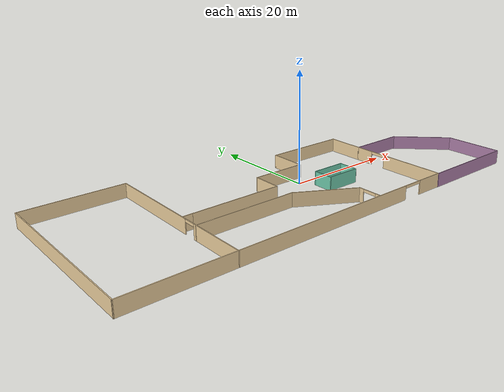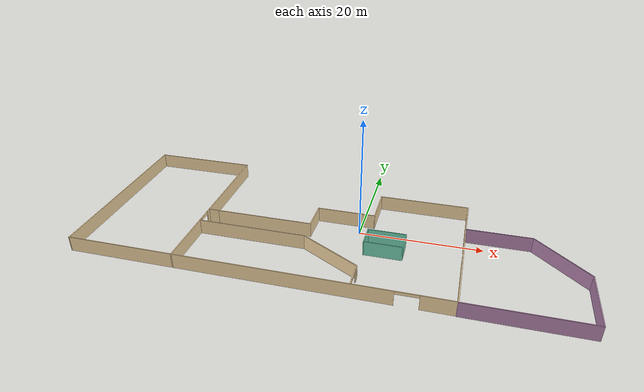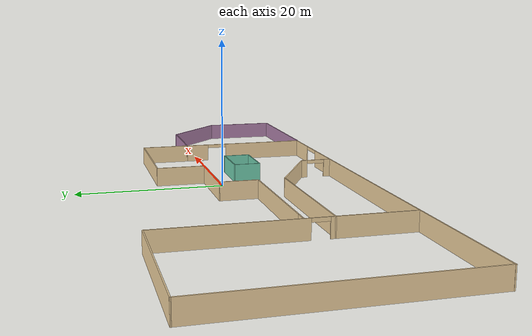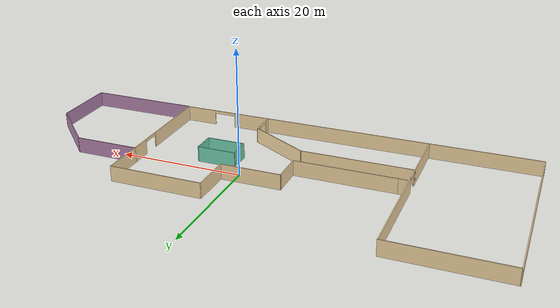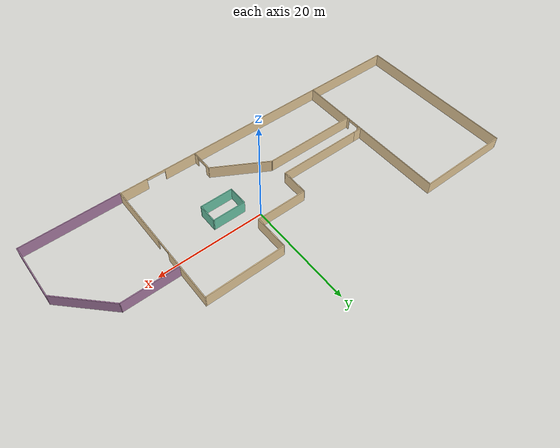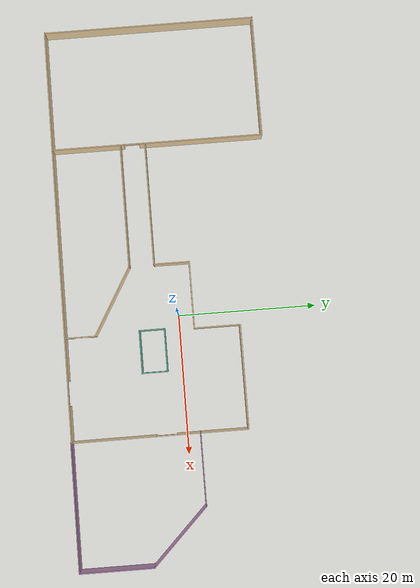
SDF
<?xml version='1.0'?>
<sdf version='1.6'>
  <model name='office'>
    <pose frame=''>-3.92011 -1.24039 0 0 -0 0</pose>
    <link name='Wall_0'>
      <collision name='Wall_0_Collision'>
        <geometry>
          <box>
            <size>5.22347 0.15 2.5</size>
          </box>
        </geometry>
        <pose frame=''>0 0 1.25 0 -0 0</pose>
      </collision>
      <visual name='Wall_0_Visual'>
        <pose frame=''>0 0 1.25 0 -0 0</pose>
        <geometry>
          <box>
            <size>5.22347 0.15 2.5</size>
          </box>
        </geometry>
        <material>
          <script>
            <uri>file://media/materials/scripts/gazebo.material</uri>
            <name>Gazebo/Grey</name>
          </script>
          <ambient>0.921569 0.807843 0.615686 1</ambient>
        </material>
        <meta>
          <layer>0</layer>
        </meta>
      </visual>
      <pose frame=''>-3.65319 0.80369 0 0 -0 1.56555</pose>
    </link>
    <link name='Wall_1'>
      <collision name='Wall_1_Collision'>
        <geometry>
          <box>
            <size>9.75 0.15 2.5</size>
          </box>
        </geometry>
        <pose frame=''>0 0 1.25 0 -0 0</pose>
      </collision>
      <visual name='Wall_1_Visual'>
        <pose frame=''>0 0 1.25 0 -0 0</pose>
        <geometry>
          <box>
            <size>9.75 0.15 2.5</size>
          </box>
        </geometry>
        <material>
          <script>
            <uri>file://media/materials/scripts/gazebo.material</uri>
            <name>Gazebo/Grey</name>
          </script>
          <ambient>0.921569 0.807843 0.615686 1</ambient>
        </material>
        <meta>
          <layer>0</layer>
        </meta>
      </visual>
      <pose frame=''>1.16011 3.34039 0 0 -0 0</pose>
    </link>
    <link name='Wall_12'>
      <collision name='Wall_12_Collision'>
        <geometry>
          <box>
            <size>16.25 0.15 2.5</size>
          </box>
        </geometry>
        <pose frame=''>0 0 1.25 0 -0 0</pose>
      </collision>
      <visual name='Wall_12_Visual'>
        <pose frame=''>0 0 1.25 0 -0 0</pose>
        <geometry>
          <box>
            <size>16.25 0.15 2.5</size>
          </box>
        </geometry>
        <material>
          <script>
            <uri>file://media/materials/scripts/gazebo.material</uri>
            <name>Gazebo/Grey</name>
          </script>
          <ambient>0.921569 0.807843 0.615686 1</ambient>
        </material>
        <meta>
          <layer>0</layer>
        </meta>
      </visual>
      <pose frame=''>-11.7165 -1.75961 0 0 -0 3.14159</pose>
    </link>
    <link name='Wall_2'>
      <collision name='Wall_2_Collision'>
        <geometry>
          <box>
            <size>6.75 0.15 2.5</size>
          </box>
        </geometry>
        <pose frame=''>0 0 1.25 0 -0 0</pose>
      </collision>
      <visual name='Wall_2_Visual'>
        <pose frame=''>0 0 1.25 0 -0 0</pose>
        <geometry>
          <box>
            <size>6.75 0.15 2.5</size>
          </box>
        </geometry>
        <material>
          <script>
            <uri>file://media/materials/scripts/gazebo.material</uri>
            <name>Gazebo/Grey</name>
          </script>
          <ambient>0.921569 0.807843 0.615686 1</ambient>
        </material>
        <meta>
          <layer>0</layer>
        </meta>
      </visual>
      <pose frame=''>5.96011 6.64039 0 0 -0 1.5708</pose>
    </link>
    <link name='Wall_25'>
      <collision name='Wall_25_Collision'>
        <geometry>
          <box>
            <size>18.25 0.15 2.5</size>
          </box>
        </geometry>
        <pose frame=''>0 0 1.25 0 -0 0</pose>
      </collision>
      <visual name='Wall_25_Visual'>
        <pose frame=''>0 0 1.25 0 -0 0</pose>
        <geometry>
          <box>
            <size>18.25 0.15 2.5</size>
          </box>
        </geometry>
        <material>
          <script>
            <uri>file://media/materials/scripts/gazebo.material</uri>
            <name>Gazebo/Grey</name>
          </script>
          <ambient>0.678431 0.498039 0.658824 1</ambient>
        </material>
        <meta>
          <layer>0</layer>
        </meta>
      </visual>
      <pose frame=''>29.9204 -15.3405 0 0 -0 0</pose>
    </link>
    <link name='Wall_27'>
      <pose frame=''>20.8453 -6.08461 0 0 -0 -1.56696</pose>
      <visual name='Wall_27_Visual_0'>
        <pose frame=''>-7.53879 0 1.25 0 -0 0</pose>
        <geometry>
          <box>
            <size>3.42242 0.15 2.5</size>
          </box>
        </geometry>
        <material>
          <script>
            <uri>file://media/materials/scripts/gazebo.material</uri>
            <name>Gazebo/Grey</name>
          </script>
          <ambient>0.921569 0.807843 0.615686 1</ambient>
        </material>
        <meta>
          <layer>0</layer>
        </meta>
      </visual>
      <collision name='Wall_27_Collision_0'>
        <geometry>
          <box>
            <size>3.42242 0.15 2.5</size>
          </box>
        </geometry>
        <pose frame=''>-7.53879 0 1.25 0 -0 0</pose>
      </collision>
      <visual name='Wall_27_Visual_1'>
        <pose frame=''>3.16381 0 1.25 0 -0 0</pose>
        <geometry>
          <box>
            <size>12.1724 0.15 2.5</size>
          </box>
        </geometry>
        <material>
          <script>
            <uri>file://media/materials/scripts/gazebo.material</uri>
            <name>Gazebo/Grey</name>
          </script>
          <ambient>0.921569 0.807843 0.615686 1</ambient>
        </material>
        <meta>
          <layer>0</layer>
        </meta>
      </visual>
      <collision name='Wall_27_Collision_1'>
        <geometry>
          <box>
            <size>12.1724 0.15 2.5</size>
          </box>
        </geometry>
        <pose frame=''>3.16381 0 1.25 0 -0 0</pose>
      </collision>
      <visual name='Wall_27_Visual_2'>
        <pose frame=''>-4.37498 0 2.25 0 -0 0</pose>
        <geometry>
          <box>
            <size>2.90519 0.15 0.5</size>
          </box>
        </geometry>
        <material>
          <script>
            <uri>file://media/materials/scripts/gazebo.material</uri>
            <name>Gazebo/Grey</name>
          </script>
          <ambient>0.921569 0.807843 0.615686 1</ambient>
        </material>
        <meta>
          <layer>0</layer>
        </meta>
      </visual>
      <collision name='Wall_27_Collision_2'>
        <geometry>
          <box>
            <size>2.90519 0.15 0.5</size>
          </box>
        </geometry>
        <pose frame=''>-4.37498 0 2.25 0 -0 0</pose>
      </collision>
    </link>
    <link name='Wall_28'>
      <collision name='Wall_28_Collision'>
        <geometry>
          <box>
            <size>18 0.15 2.5</size>
          </box>
        </geometry>
        <pose frame=''>0 0 1.25 0 -0 0</pose>
      </collision>
      <visual name='Wall_28_Visual'>
        <pose frame=''>0 0 1.25 0 -0 0</pose>
        <geometry>
          <box>
            <size>18 0.15 2.5</size>
          </box>
        </geometry>
        <material>
          <script>
            <uri>file://media/materials/scripts/gazebo.material</uri>
            <name>Gazebo/Grey</name>
          </script>
          <ambient>0.921569 0.807843 0.615686 1</ambient>
        </material>
        <meta>
          <layer>0</layer>
        </meta>
      </visual>
      <pose frame=''>-12.5173 -5.35829 0 0 -0 0</pose>
    </link>
    <link name='Wall_3'>
      <collision name='Wall_3_Collision'>
        <geometry>
          <box>
            <size>15 0.15 2.5</size>
          </box>
        </geometry>
        <pose frame=''>0 0 1.25 0 -0 0</pose>
      </collision>
      <visual name='Wall_3_Visual'>
        <pose frame=''>0 0 1.25 0 -0 0</pose>
        <geometry>
          <box>
            <size>15 0.15 2.5</size>
          </box>
        </geometry>
        <material>
          <script>
            <uri>file://media/materials/scripts/gazebo.material</uri>
            <name>Gazebo/Grey</name>
          </script>
          <ambient>0.921569 0.807843 0.615686 1</ambient>
        </material>
        <meta>
          <layer>0</layer>
        </meta>
      </visual>
      <pose frame=''>13.3851 9.94039 0 0 -0 0</pose>
    </link>
    <link name='Wall_31'>
      <pose frame=''>-9.07971 -15.2596 0 0 -0 3.14159</pose>
      <visual name='Wall_31_Visual_0'>
        <pose frame=''>-27.4217 0 1.25 0 -0 0</pose>
        <geometry>
          <box>
            <size>5.15663 0.15 2.5</size>
          </box>
        </geometry>
        <material>
          <script>
            <uri>file://media/materials/scripts/gazebo.material</uri>
            <name>Gazebo/Grey</name>
          </script>
          <ambient>0.921569 0.807843 0.615686 1</ambient>
        </material>
        <meta>
          <layer>0</layer>
        </meta>
      </visual>
      <collision name='Wall_31_Collision_0'>
        <geometry>
          <box>
            <size>5.15663 0.15 2.5</size>
          </box>
        </geometry>
        <pose frame=''>-27.4217 0 1.25 0 -0 0</pose>
      </collision>
      <visual name='Wall_31_Visual_1'>
        <pose frame=''>4.35425 0 1.25 0 -0 0</pose>
        <geometry>
          <box>
            <size>51.2915 0.15 2.5</size>
          </box>
        </geometry>
        <material>
          <script>
            <uri>file://media/materials/scripts/gazebo.material</uri>
            <name>Gazebo/Grey</name>
          </script>
          <ambient>0.921569 0.807843 0.615686 1</ambient>
        </material>
        <meta>
          <layer>0</layer>
        </meta>
      </visual>
      <collision name='Wall_31_Collision_1'>
        <geometry>
          <box>
            <size>51.2915 0.15 2.5</size>
          </box>
        </geometry>
        <pose frame=''>4.35425 0 1.25 0 -0 0</pose>
      </collision>
      <visual name='Wall_31_Visual_2'>
        <pose frame=''>-23.0674 0 2.25 0 -0 0</pose>
        <geometry>
          <box>
            <size>3.55186 0.15 0.5</size>
          </box>
        </geometry>
        <material>
          <script>
            <uri>file://media/materials/scripts/gazebo.material</uri>
            <name>Gazebo/Grey</name>
          </script>
          <ambient>0.921569 0.807843 0.615686 1</ambient>
        </material>
        <meta>
          <layer>0</layer>
        </meta>
      </visual>
      <collision name='Wall_31_Collision_2'>
        <geometry>
          <box>
            <size>3.55186 0.15 0.5</size>
          </box>
        </geometry>
        <pose frame=''>-23.0674 0 2.25 0 -0 0</pose>
      </collision>
    </link>
    <link name='Wall_32'>
      <collision name='Wall_32_Collision'>
        <geometry>
          <box>
            <size>30.75 0.15 2.5</size>
          </box>
        </geometry>
        <pose frame=''>0 0 1.25 0 -0 0</pose>
      </collision>
      <visual name='Wall_32_Visual'>
        <pose frame=''>0 0 1.25 0 -0 0</pose>
        <geometry>
          <box>
            <size>30.75 0.15 2.5</size>
          </box>
        </geometry>
        <material>
          <script>
            <uri>file://media/materials/scripts/gazebo.material</uri>
            <name>Gazebo/Grey</name>
          </script>
          <ambient>0.921569 0.807843 0.615686 1</ambient>
        </material>
        <meta>
          <layer>0</layer>
        </meta>
      </visual>
      <pose frame=''>-39.0047 0.04039 0 0 -0 1.5731</pose>
    </link>
    <link name='Wall_33'>
      <collision name='Wall_33_Collision'>
        <geometry>
          <box>
            <size>17.75 0.15 2.5</size>
          </box>
        </geometry>
        <pose frame=''>0 0 1.25 0 -0 0</pose>
      </collision>
      <visual name='Wall_33_Visual'>
        <pose frame=''>0 0 1.25 0 -0 0</pose>
        <geometry>
          <box>
            <size>17.75 0.15 2.5</size>
          </box>
        </geometry>
        <material>
          <script>
            <uri>file://media/materials/scripts/gazebo.material</uri>
            <name>Gazebo/Grey</name>
          </script>
          <ambient>0.921569 0.807843 0.615686 1</ambient>
        </material>
        <meta>
          <layer>0</layer>
        </meta>
      </visual>
      <pose frame=''>-30.2399 15.3404 0 0 -0 0</pose>
    </link>
    <link name='Wall_34'>
      <pose frame=''>-21.4399 0.04039 0 0 -0 -1.5708</pose>
      <visual name='Wall_34_Visual_0'>
        <pose frame=''>-6.3674 0 1.25 0 -0 0</pose>
        <geometry>
          <box>
            <size>18.0152 0.15 2.5</size>
          </box>
        </geometry>
        <material>
          <script>
            <uri>file://media/materials/scripts/gazebo.material</uri>
            <name>Gazebo/Grey</name>
          </script>
          <ambient>0.921569 0.807843 0.615686 1</ambient>
        </material>
        <meta>
          <layer>0</layer>
        </meta>
      </visual>
      <collision name='Wall_34_Collision_0'>
        <geometry>
          <box>
            <size>18.0152 0.15 2.5</size>
          </box>
        </geometry>
        <pose frame=''>-6.3674 0 1.25 0 -0 0</pose>
      </collision>
      <visual name='Wall_34_Visual_1'>
        <pose frame=''>10.1 0 1.25 0 -0 0</pose>
        <geometry>
          <box>
            <size>10.55 0.15 2.5</size>
          </box>
        </geometry>
        <material>
          <script>
            <uri>file://media/materials/scripts/gazebo.material</uri>
            <name>Gazebo/Grey</name>
          </script>
          <ambient>0.921569 0.807843 0.615686 1</ambient>
        </material>
        <meta>
          <layer>0</layer>
        </meta>
      </visual>
      <collision name='Wall_34_Collision_1'>
        <geometry>
          <box>
            <size>10.55 0.15 2.5</size>
          </box>
        </geometry>
        <pose frame=''>10.1 0 1.25 0 -0 0</pose>
      </collision>
      <visual name='Wall_34_Visual_2'>
        <pose frame=''>3.7326 0 2.25 0 -0 0</pose>
        <geometry>
          <box>
            <size>2.18479 0.15 0.5</size>
          </box>
        </geometry>
        <material>
          <script>
            <uri>file://media/materials/scripts/gazebo.material</uri>
            <name>Gazebo/Grey</name>
          </script>
          <ambient>0.921569 0.807843 0.615686 1</ambient>
        </material>
        <meta>
          <layer>0</layer>
        </meta>
      </visual>
      <collision name='Wall_34_Collision_2'>
        <geometry>
          <box>
            <size>2.18479 0.15 0.5</size>
          </box>
        </geometry>
        <pose frame=''>3.7326 0 2.25 0 -0 0</pose>
      </collision>
    </link>
    <link name='Wall_36'>
      <collision name='Wall_36_Collision'>
        <geometry>
          <box>
            <size>1.75 0.15 2.5</size>
          </box>
        </geometry>
        <pose frame=''>0 0 1.25 0 -0 0</pose>
      </collision>
      <visual name='Wall_36_Visual'>
        <pose frame=''>0 0 1.25 0 -0 0</pose>
        <geometry>
          <box>
            <size>1.75 0.15 2.5</size>
          </box>
        </geometry>
        <material>
          <script>
            <uri>file://media/materials/scripts/gazebo.material</uri>
            <name>Gazebo/Grey</name>
          </script>
          <ambient>0.921569 0.807843 0.615686 1</ambient>
        </material>
        <meta>
          <layer>0</layer>
        </meta>
      </visual>
      <pose frame=''>-20.5665 -1.75961 0 0 -0 3.14159</pose>
    </link>
    <link name='Wall_38'>
      <collision name='Wall_38_Collision'>
        <geometry>
          <box>
            <size>11.25 0.15 2.5</size>
          </box>
        </geometry>
        <pose frame=''>0 0 1.25 0 -0 0</pose>
      </collision>
      <visual name='Wall_38_Visual'>
        <pose frame=''>0 0 1.25 0 -0 0</pose>
        <geometry>
          <box>
            <size>11.25 0.15 2.5</size>
          </box>
        </geometry>
        <material>
          <script>
            <uri>file://media/materials/scripts/gazebo.material</uri>
            <name>Gazebo/Grey</name>
          </script>
          <ambient>0.921569 0.807843 0.615686 1</ambient>
        </material>
        <meta>
          <layer>0</layer>
        </meta>
      </visual>
      <pose frame=''>1.21412 -8.13329 0 0 -0 -0.523599</pose>
    </link>
    <link name='Wall_39'>
      <pose frame=''>6.02056 -13.0833 0 0 -0 -1.5708</pose>
      <visual name='Wall_39_Visual_0'>
        <pose frame=''>-1.78066 0 1.25 0 -0 0</pose>
        <geometry>
          <box>
            <size>0.938674 0.15 2.5</size>
          </box>
        </geometry>
        <material>
          <script>
            <uri>file://media/materials/scripts/gazebo.material</uri>
            <name>Gazebo/Grey</name>
          </script>
          <ambient>0.921569 0.807843 0.615686 1</ambient>
        </material>
        <meta>
          <layer>0</layer>
        </meta>
      </visual>
      <collision name='Wall_39_Collision_0'>
        <geometry>
          <box>
            <size>0.938674 0.15 2.5</size>
          </box>
        </geometry>
        <pose frame=''>-1.78066 0 1.25 0 -0 0</pose>
      </collision>
      <visual name='Wall_39_Visual_1'>
        <pose frame=''>1.71425 0 1.25 0 -0 0</pose>
        <geometry>
          <box>
            <size>1.07151 0.15 2.5</size>
          </box>
        </geometry>
        <material>
          <script>
            <uri>file://media/materials/scripts/gazebo.material</uri>
            <name>Gazebo/Grey</name>
          </script>
          <ambient>0.921569 0.807843 0.615686 1</ambient>
        </material>
        <meta>
          <layer>0</layer>
        </meta>
      </visual>
      <collision name='Wall_39_Collision_1'>
        <geometry>
          <box>
            <size>1.07151 0.15 2.5</size>
          </box>
        </geometry>
        <pose frame=''>1.71425 0 1.25 0 -0 0</pose>
      </collision>
      <visual name='Wall_39_Visual_2'>
        <pose frame=''>-0.066418 0 2.25 0 -0 0</pose>
        <geometry>
          <box>
            <size>2.48982 0.15 0.5</size>
          </box>
        </geometry>
        <material>
          <script>
            <uri>file://media/materials/scripts/gazebo.material</uri>
            <name>Gazebo/Grey</name>
          </script>
          <ambient>0.921569 0.807843 0.615686 1</ambient>
        </material>
        <meta>
          <layer>0</layer>
        </meta>
      </visual>
      <collision name='Wall_39_Collision_2'>
        <geometry>
          <box>
            <size>2.48982 0.15 0.5</size>
          </box>
        </geometry>
        <pose frame=''>-0.066418 0 2.25 0 -0 0</pose>
      </collision>
    </link>
    <link name='Wall_41'>
      <collision name='Wall_41_Collision'>
        <geometry>
          <box>
            <size>3.75 0.15 2.5</size>
          </box>
        </geometry>
        <pose frame=''>0 0 1.25 0 -0 0</pose>
      </collision>
      <visual name='Wall_41_Visual'>
        <pose frame=''>0 0 1.25 0 -0 0</pose>
        <geometry>
          <box>
            <size>3.75 0.15 2.5</size>
          </box>
        </geometry>
        <material>
          <script>
            <uri>file://media/materials/scripts/gazebo.material</uri>
            <name>Gazebo/Grey</name>
          </script>
          <ambient>0.435294 0.796078 0.67451 1</ambient>
        </material>
        <meta>
          <layer>0</layer>
        </meta>
      </visual>
      <pose frame=''>5.72064 -2.74195 0 0 -0 -1.5708</pose>
    </link>
    <link name='Wall_42'>
      <collision name='Wall_42_Collision'>
        <geometry>
          <box>
            <size>6.25 0.15 2.5</size>
          </box>
        </geometry>
        <pose frame=''>0 0 1.25 0 -0 0</pose>
      </collision>
      <visual name='Wall_42_Visual'>
        <pose frame=''>0 0 1.25 0 -0 0</pose>
        <geometry>
          <box>
            <size>6.25 0.15 2.5</size>
          </box>
        </geometry>
        <material>
          <script>
            <uri>file://media/materials/scripts/gazebo.material</uri>
            <name>Gazebo/Grey</name>
          </script>
          <ambient>0.435294 0.796078 0.67451 1</ambient>
        </material>
        <meta>
          <layer>0</layer>
        </meta>
      </visual>
      <pose frame=''>8.77064 -4.54195 0 0 -0 0</pose>
    </link>
    <link name='Wall_43'>
      <collision name='Wall_43_Collision'>
        <geometry>
          <box>
            <size>3.75 0.15 2.5</size>
          </box>
        </geometry>
        <pose frame=''>0 0 1.25 0 -0 0</pose>
      </collision>
      <visual name='Wall_43_Visual'>
        <pose frame=''>0 0 1.25 0 -0 0</pose>
        <geometry>
          <box>
            <size>3.75 0.15 2.5</size>
          </box>
        </geometry>
        <material>
          <script>
            <uri>file://media/materials/scripts/gazebo.material</uri>
            <name>Gazebo/Grey</name>
          </script>
          <ambient>0.435294 0.796078 0.67451 1</ambient>
        </material>
        <meta>
          <layer>0</layer>
        </meta>
      </visual>
      <pose frame=''>11.8206 -2.74195 0 0 -0 1.5708</pose>
    </link>
    <link name='Wall_44'>
      <collision name='Wall_44_Collision'>
        <geometry>
          <box>
            <size>6.25 0.15 2.5</size>
          </box>
        </geometry>
        <pose frame=''>0 0 1.25 0 -0 0</pose>
      </collision>
      <visual name='Wall_44_Visual'>
        <pose frame=''>0 0 1.25 0 -0 0</pose>
        <geometry>
          <box>
            <size>6.25 0.15 2.5</size>
          </box>
        </geometry>
        <material>
          <script>
            <uri>file://media/materials/scripts/gazebo.material</uri>
            <name>Gazebo/Grey</name>
          </script>
          <ambient>0.435294 0.796078 0.67451 1</ambient>
        </material>
        <meta>
          <layer>0</layer>
        </meta>
      </visual>
      <pose frame=''>8.77064 -0.941952 0 0 -0 3.14159</pose>
    </link>
    <link name='Wall_6'>
      <collision name='Wall_6_Collision'>
        <geometry>
          <box>
            <size>7 0.15 2.5</size>
          </box>
        </geometry>
        <pose frame=''>0 0 1.25 0 -0 0</pose>
      </collision>
      <visual name='Wall_6_Visual'>
        <pose frame=''>0 0 1.25 0 -0 0</pose>
        <geometry>
          <box>
            <size>7 0.15 2.5</size>
          </box>
        </geometry>
        <material>
          <script>
            <uri>file://media/materials/scripts/gazebo.material</uri>
            <name>Gazebo/Grey</name>
          </script>
          <ambient>0.921569 0.807843 0.615686 1</ambient>
        </material>
        <meta>
          <layer>0</layer>
        </meta>
      </visual>
      <pose frame=''>20.8101 6.51539 0 0 -0 -1.5708</pose>
    </link>
    <link name='Wall_7'>
      <collision name='Wall_7_Collision'>
        <geometry>
          <box>
            <size>10.5 0.15 2.5</size>
          </box>
        </geometry>
        <pose frame=''>0 0 1.25 0 -0 0</pose>
      </collision>
      <visual name='Wall_7_Visual'>
        <pose frame=''>0 0 1.25 0 -0 0</pose>
        <geometry>
          <box>
            <size>10.5 0.15 2.5</size>
          </box>
        </geometry>
        <material>
          <script>
            <uri>file://media/materials/scripts/gazebo.material</uri>
            <name>Gazebo/Grey</name>
          </script>
          <ambient>0.678431 0.498039 0.658824 1</ambient>
        </material>
        <meta>
          <layer>0</layer>
        </meta>
      </visual>
      <pose frame=''>25.9851 3.09039 0 0 -0 0</pose>
    </link>
    <link name='Wall_8'>
      <collision name='Wall_8_Collision'>
        <geometry>
          <box>
            <size>11.25 0.15 2.5</size>
          </box>
        </geometry>
        <pose frame=''>0 0 1.25 0 -0 0</pose>
      </collision>
      <visual name='Wall_8_Visual'>
        <pose frame=''>0 0 1.25 0 -0 0</pose>
        <geometry>
          <box>
            <size>11.25 0.15 2.5</size>
          </box>
        </geometry>
        <material>
          <script>
            <uri>file://media/materials/scripts/gazebo.material</uri>
            <name>Gazebo/Grey</name>
          </script>
          <ambient>0.678431 0.498039 0.658824 1</ambient>
        </material>
        <meta>
          <layer>0</layer>
        </meta>
      </visual>
      <pose frame=''>35.0846 -0.834053 0 0 -0 -0.785398</pose>
    </link>
    <link name='Wall_9'>
      <collision name='Wall_9_Collision'>
        <geometry>
          <box>
            <size>10.7102 0.15 2.5</size>
          </box>
        </geometry>
        <pose frame=''>0 0 1.25 0 -0 0</pose>
      </collision>
      <visual name='Wall_9_Visual'>
        <pose frame=''>0 0 1.25 0 -0 0</pose>
        <geometry>
          <box>
            <size>10.7102 0.15 2.5</size>
          </box>
        </geometry>
        <material>
          <script>
            <uri>file://media/materials/scripts/gazebo.material</uri>
            <name>Gazebo/Grey</name>
          </script>
          <ambient>0.678431 0.498039 0.658824 1</ambient>
        </material>
        <meta>
          <layer>0</layer>
        </meta>
      </visual>
      <pose frame=''>39.009 -10.0383 0 0 -0 -1.5708</pose>
    </link>
    <static>1</static>
  </model>
</sdf>
